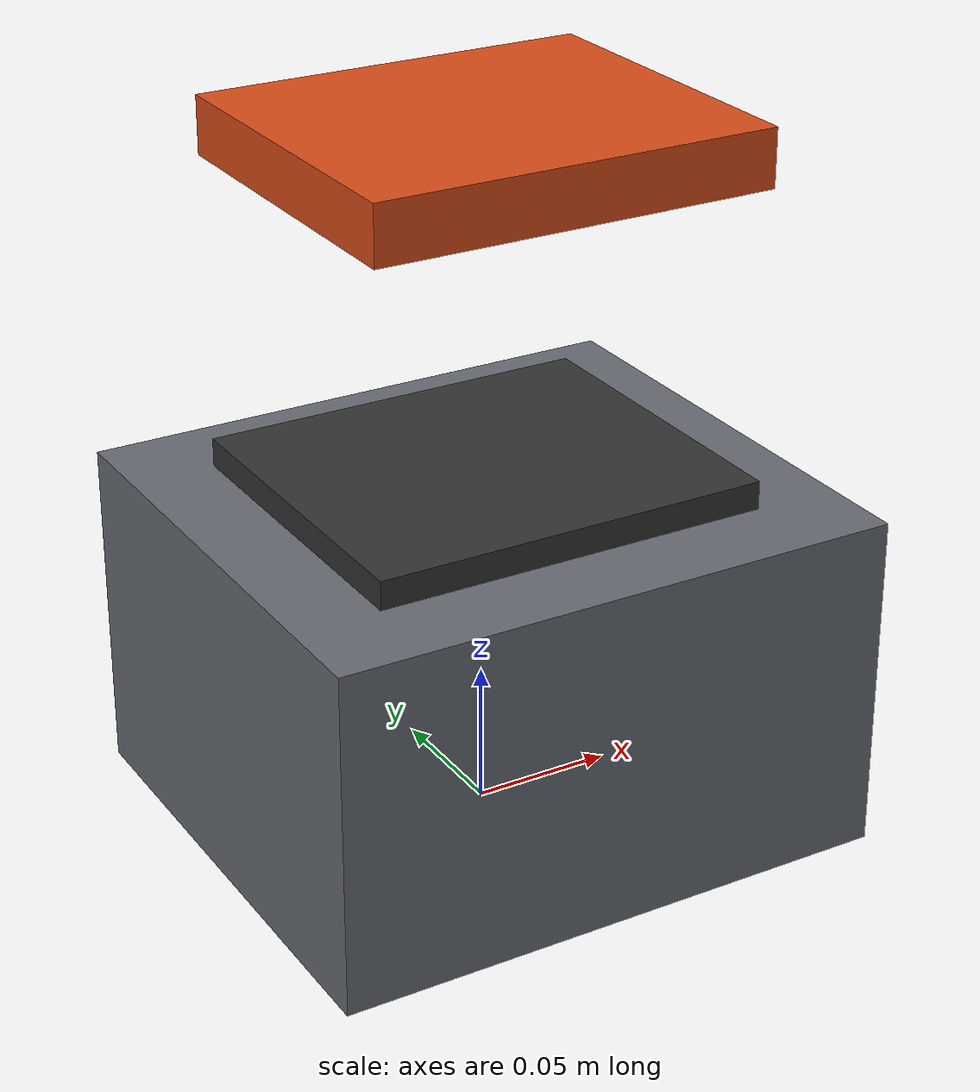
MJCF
<?xml version="1.0" encoding="utf-8"?>
<mujoco model="hot_press">
  <compiler angle="radian" autolimits="true"/>
  <default>
    <default class="body"><geom contype="1" conaffinity="1"/></default>
  </default>
  <worldbody>
    <body name="base">
      <geom type="box" size="0.10 0.09 0.06" pos="0 0 0.06" rgba="0.4 0.42 0.45 1" class="body"/>
      <geom type="box" size="0.07 0.06 0.005" pos="0 0 0.125" rgba="0.2 0.2 0.2 1" class="body"/>
      <body name="platen" pos="0 0 0.24">
        <joint name="platen_joint" type="slide" axis="0 0 1" range="-0.06 0" damping="1.0" frictionloss="0.3"/>
  <geom type="box" size="0.07 0.06 0.01" pos="0 0 0" rgba="0.85 0.3 0.1 0.9" class="body"/>
      </body>
    </body>
  </worldbody>
</mujoco>
